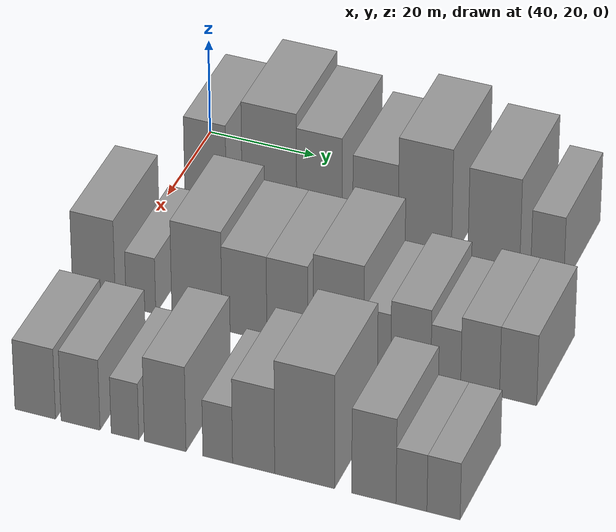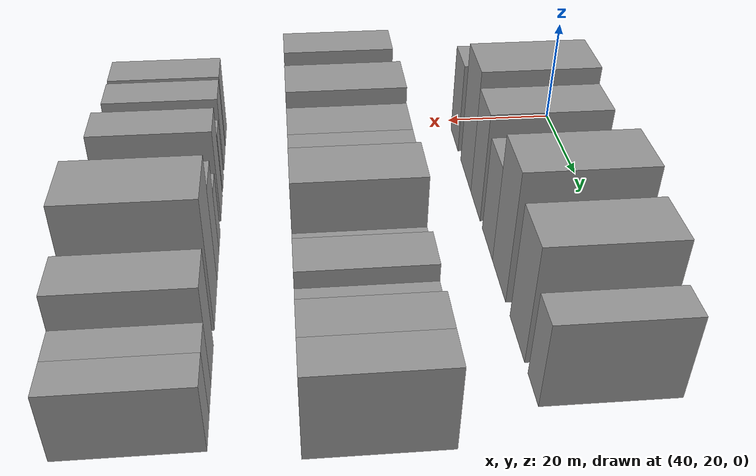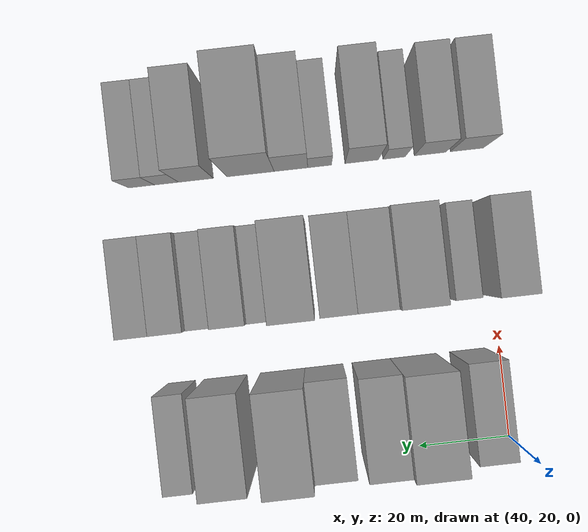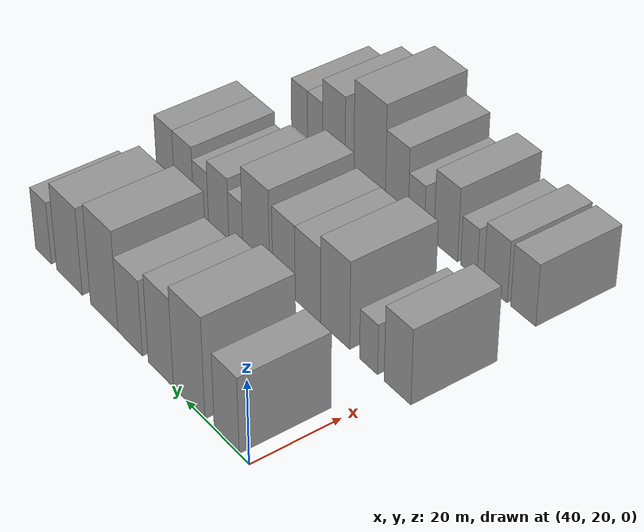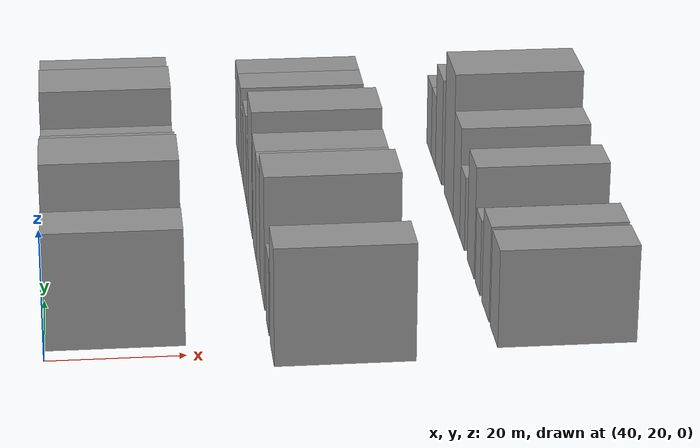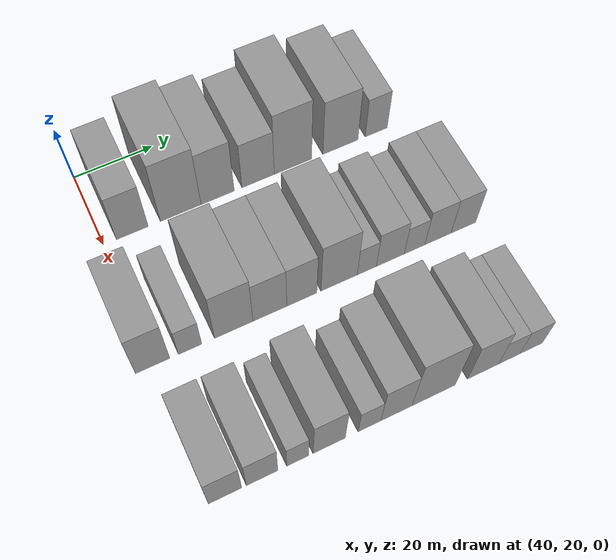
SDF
<sdf version="1.6">
 <world name="default">
  <model name="building_38">
   <static>1</static>
   <pose>50.0000 27.1432 0 0.000000 0.000000 0.000000</pose>
   <link name="link">
    <pose>0 0 9.00 0 0 0</pose>
    <collision name="collision"><geometry><box><size>20.0000 7.8603 18.0000</size></box></geometry></collision>
    <visual name="visual">
     <cast_shadows>0</cast_shadows>
     <geometry><box><size>20.0000 7.8603 18.0000</size></box></geometry>
     <material>
      <script>
       <uri>model://grey_wall/materials/scripts</uri>
       <uri>model://grey_wall/materials/textures</uri>
       <name>vrc/grey_wall</name>
      </script>
     </material>
    </visual>
   </link>
  </model>
  <model name="building_39">
   <static>1</static>
   <pose>50.0000 39.2020 0 0.000000 0.000000 0.000000</pose>
   <link name="link">
    <pose>0 0 12.00 0 0 0</pose>
    <collision name="collision"><geometry><box><size>20.0000 10.2574 24.0000</size></box></geometry></collision>
    <visual name="visual">
     <cast_shadows>0</cast_shadows>
     <geometry><box><size>20.0000 10.2574 24.0000</size></box></geometry>
     <material>
      <script>
       <uri>model://grey_wall/materials/scripts</uri>
       <uri>model://grey_wall/materials/textures</uri>
       <name>vrc/grey_wall</name>
      </script>
     </material>
    </visual>
   </link>
  </model>
  <model name="building_40">
   <static>1</static>
   <pose>50.0000 48.5770 0 0.000000 0.000000 0.000000</pose>
   <link name="link">
    <pose>0 0 10.50 0 0 0</pose>
    <collision name="collision"><geometry><box><size>20.0000 8.4925 21.0000</size></box></geometry></collision>
    <visual name="visual">
     <cast_shadows>0</cast_shadows>
     <geometry><box><size>20.0000 8.4925 21.0000</size></box></geometry>
     <material>
      <script>
       <uri>model://grey_wall/materials/scripts</uri>
       <uri>model://grey_wall/materials/textures</uri>
       <name>vrc/grey_wall</name>
      </script>
     </material>
    </visual>
   </link>
  </model>
  <model name="building_41">
   <static>1</static>
   <pose>50.0000 59.0320 0 0.000000 0.000000 0.000000</pose>
   <link name="link">
    <pose>0 0 9.00 0 0 0</pose>
    <collision name="collision"><geometry><box><size>20.0000 8.4174 18.0000</size></box></geometry></collision>
    <visual name="visual">
     <cast_shadows>0</cast_shadows>
     <geometry><box><size>20.0000 8.4174 18.0000</size></box></geometry>
     <material>
      <script>
       <uri>model://grey_wall/materials/scripts</uri>
       <uri>model://grey_wall/materials/textures</uri>
       <name>vrc/grey_wall</name>
      </script>
     </material>
    </visual>
   </link>
  </model>
  <model name="building_42">
   <static>1</static>
   <pose>50.0000 68.1837 0 0.000000 0.000000 0.000000</pose>
   <link name="link">
    <pose>0 0 12.00 0 0 0</pose>
    <collision name="collision"><geometry><box><size>20.0000 9.8862 24.0000</size></box></geometry></collision>
    <visual name="visual">
     <cast_shadows>0</cast_shadows>
     <geometry><box><size>20.0000 9.8862 24.0000</size></box></geometry>
     <material>
      <script>
       <uri>model://grey_wall/materials/scripts</uri>
       <uri>model://grey_wall/materials/textures</uri>
       <name>vrc/grey_wall</name>
      </script>
     </material>
    </visual>
   </link>
  </model>
  <model name="building_43">
   <static>1</static>
   <pose>50.0000 80.8835 0 0.000000 0.000000 0.000000</pose>
   <link name="link">
    <pose>0 0 10.50 0 0 0</pose>
    <collision name="collision"><geometry><box><size>20.0000 9.5133 21.0000</size></box></geometry></collision>
    <visual name="visual">
     <cast_shadows>0</cast_shadows>
     <geometry><box><size>20.0000 9.5133 21.0000</size></box></geometry>
     <material>
      <script>
       <uri>model://grey_wall/materials/scripts</uri>
       <uri>model://grey_wall/materials/textures</uri>
       <name>vrc/grey_wall</name>
      </script>
     </material>
    </visual>
   </link>
  </model>
  <model name="building_44">
   <static>1</static>
   <pose>50.0000 90.6628 0 0.000000 0.000000 0.000000</pose>
   <link name="link">
    <pose>0 0 7.50 0 0 0</pose>
    <collision name="collision"><geometry><box><size>20.0000 6.0455 15.0000</size></box></geometry></collision>
    <visual name="visual">
     <cast_shadows>0</cast_shadows>
     <geometry><box><size>20.0000 6.0455 15.0000</size></box></geometry>
     <material>
      <script>
       <uri>model://grey_wall/materials/scripts</uri>
       <uri>model://grey_wall/materials/textures</uri>
       <name>vrc/grey_wall</name>
      </script>
     </material>
    </visual>
   </link>
  </model>
  <model name="building_107">
   <static>1</static>
   <pose>82.0000 19.3540 0 0.000000 0.000000 0.000000</pose>
   <link name="link">
    <pose>0 0 9.00 0 0 0</pose>
    <collision name="collision"><geometry><box><size>20.0000 7.9492 18.0000</size></box></geometry></collision>
    <visual name="visual">
     <cast_shadows>0</cast_shadows>
     <geometry><box><size>20.0000 7.9492 18.0000</size></box></geometry>
     <material>
      <script>
       <uri>model://grey_wall/materials/scripts</uri>
       <uri>model://grey_wall/materials/textures</uri>
       <name>vrc/grey_wall</name>
      </script>
     </material>
    </visual>
   </link>
  </model>
  <model name="building_108">
   <static>1</static>
   <pose>82.0000 28.0753 0 0.000000 0.000000 0.000000</pose>
   <link name="link">
    <pose>0 0 6.00 0 0 0</pose>
    <collision name="collision"><geometry><box><size>20.0000 5.4935 12.0000</size></box></geometry></collision>
    <visual name="visual">
     <cast_shadows>0</cast_shadows>
     <geometry><box><size>20.0000 5.4935 12.0000</size></box></geometry>
     <material>
      <script>
       <uri>model://grey_wall/materials/scripts</uri>
       <uri>model://grey_wall/materials/textures</uri>
       <name>vrc/grey_wall</name>
      </script>
     </material>
    </visual>
   </link>
  </model>
  <model name="building_109">
   <static>1</static>
   <pose>82.0000 38.4294 0 0.000000 0.000000 0.000000</pose>
   <link name="link">
    <pose>0 0 10.50 0 0 0</pose>
    <collision name="collision"><geometry><box><size>20.0000 9.2146 21.0000</size></box></geometry></collision>
    <visual name="visual">
     <cast_shadows>0</cast_shadows>
     <geometry><box><size>20.0000 9.2146 21.0000</size></box></geometry>
     <material>
      <script>
       <uri>model://grey_wall/materials/scripts</uri>
       <uri>model://grey_wall/materials/textures</uri>
       <name>vrc/grey_wall</name>
      </script>
     </material>
    </visual>
   </link>
  </model>
  <model name="building_110">
   <static>1</static>
   <pose>82.0000 47.1405 0 0.000000 0.000000 0.000000</pose>
   <link name="link">
    <pose>0 0 9.00 0 0 0</pose>
    <collision name="collision"><geometry><box><size>20.0000 8.2077 18.0000</size></box></geometry></collision>
    <visual name="visual">
     <cast_shadows>0</cast_shadows>
     <geometry><box><size>20.0000 8.2077 18.0000</size></box></geometry>
     <material>
      <script>
       <uri>model://grey_wall/materials/scripts</uri>
       <uri>model://grey_wall/materials/textures</uri>
       <name>vrc/grey_wall</name>
      </script>
     </material>
    </visual>
   </link>
  </model>
  <model name="building_111">
   <static>1</static>
   <pose>82.0000 54.9694 0 0.000000 0.000000 0.000000</pose>
   <link name="link">
    <pose>0 0 9.00 0 0 0</pose>
    <collision name="collision"><geometry><box><size>20.0000 7.4501 18.0000</size></box></geometry></collision>
    <visual name="visual">
     <cast_shadows>0</cast_shadows>
     <geometry><box><size>20.0000 7.4501 18.0000</size></box></geometry>
     <material>
      <script>
       <uri>model://grey_wall/materials/scripts</uri>
       <uri>model://grey_wall/materials/textures</uri>
       <name>vrc/grey_wall</name>
      </script>
     </material>
    </visual>
   </link>
  </model>
  <model name="building_112">
   <static>1</static>
   <pose>82.0000 64.2688 0 0.000000 0.000000 0.000000</pose>
   <link name="link">
    <pose>0 0 10.50 0 0 0</pose>
    <collision name="collision"><geometry><box><size>20.0000 9.1488 21.0000</size></box></geometry></collision>
    <visual name="visual">
     <cast_shadows>0</cast_shadows>
     <geometry><box><size>20.0000 9.1488 21.0000</size></box></geometry>
     <material>
      <script>
       <uri>model://grey_wall/materials/scripts</uri>
       <uri>model://grey_wall/materials/textures</uri>
       <name>vrc/grey_wall</name>
      </script>
     </material>
    </visual>
   </link>
  </model>
  <model name="building_113">
   <static>1</static>
   <pose>82.0000 71.2736 0 0.000000 0.000000 0.000000</pose>
   <link name="link">
    <pose>0 0 6.00 0 0 0</pose>
    <collision name="collision"><geometry><box><size>20.0000 4.8607 12.0000</size></box></geometry></collision>
    <visual name="visual">
     <cast_shadows>0</cast_shadows>
     <geometry><box><size>20.0000 4.8607 12.0000</size></box></geometry>
     <material>
      <script>
       <uri>model://grey_wall/materials/scripts</uri>
       <uri>model://grey_wall/materials/textures</uri>
       <name>vrc/grey_wall</name>
      </script>
     </material>
    </visual>
   </link>
  </model>
  <model name="building_114">
   <static>1</static>
   <pose>82.0000 77.2960 0 0.000000 0.000000 0.000000</pose>
   <link name="link">
    <pose>0 0 7.50 0 0 0</pose>
    <collision name="collision"><geometry><box><size>20.0000 7.1841 15.0000</size></box></geometry></collision>
    <visual name="visual">
     <cast_shadows>0</cast_shadows>
     <geometry><box><size>20.0000 7.1841 15.0000</size></box></geometry>
     <material>
      <script>
       <uri>model://grey_wall/materials/scripts</uri>
       <uri>model://grey_wall/materials/textures</uri>
       <name>vrc/grey_wall</name>
      </script>
     </material>
    </visual>
   </link>
  </model>
  <model name="building_115">
   <static>1</static>
   <pose>82.0000 83.5635 0 0.000000 0.000000 0.000000</pose>
   <link name="link">
    <pose>0 0 6.00 0 0 0</pose>
    <collision name="collision"><geometry><box><size>20.0000 5.3509 12.0000</size></box></geometry></collision>
    <visual name="visual">
     <cast_shadows>0</cast_shadows>
     <geometry><box><size>20.0000 5.3509 12.0000</size></box></geometry>
     <material>
      <script>
       <uri>model://grey_wall/materials/scripts</uri>
       <uri>model://grey_wall/materials/textures</uri>
       <name>vrc/grey_wall</name>
      </script>
     </material>
    </visual>
   </link>
  </model>
  <model name="building_116">
   <static>1</static>
   <pose>82.0000 89.6961 0 0.000000 0.000000 0.000000</pose>
   <link name="link">
    <pose>0 0 7.50 0 0 0</pose>
    <collision name="collision"><geometry><box><size>20.0000 6.9144 15.0000</size></box></geometry></collision>
    <visual name="visual">
     <cast_shadows>0</cast_shadows>
     <geometry><box><size>20.0000 6.9144 15.0000</size></box></geometry>
     <material>
      <script>
       <uri>model://grey_wall/materials/scripts</uri>
       <uri>model://grey_wall/materials/textures</uri>
       <name>vrc/grey_wall</name>
      </script>
     </material>
    </visual>
   </link>
  </model>
  <model name="building_117">
   <static>1</static>
   <pose>82.0000 96.4461 0 0.000000 0.000000 0.000000</pose>
   <link name="link">
    <pose>0 0 7.50 0 0 0</pose>
    <collision name="collision"><geometry><box><size>20.0000 6.5855 15.0000</size></box></geometry></collision>
    <visual name="visual">
     <cast_shadows>0</cast_shadows>
     <geometry><box><size>20.0000 6.5855 15.0000</size></box></geometry>
     <material>
      <script>
       <uri>model://grey_wall/materials/scripts</uri>
       <uri>model://grey_wall/materials/textures</uri>
       <name>vrc/grey_wall</name>
      </script>
     </material>
    </visual>
   </link>
  </model>
  <model name="building_188">
   <static>1</static>
   <pose>114.0000 22.2365 0 0.000000 0.000000 0.000000</pose>
   <link name="link">
    <pose>0 0 7.50 0 0 0</pose>
    <collision name="collision"><geometry><box><size>20.0000 7.3695 15.0000</size></box></geometry></collision>
    <visual name="visual">
     <cast_shadows>0</cast_shadows>
     <geometry><box><size>20.0000 7.3695 15.0000</size></box></geometry>
     <material>
      <script>
       <uri>model://grey_wall/materials/scripts</uri>
       <uri>model://grey_wall/materials/textures</uri>
       <name>vrc/grey_wall</name>
      </script>
     </material>
    </visual>
   </link>
  </model>
  <model name="building_189">
   <static>1</static>
   <pose>114.0000 30.4469 0 0.000000 0.000000 0.000000</pose>
   <link name="link">
    <pose>0 0 7.50 0 0 0</pose>
    <collision name="collision"><geometry><box><size>20.0000 7.0515 15.0000</size></box></geometry></collision>
    <visual name="visual">
     <cast_shadows>0</cast_shadows>
     <geometry><box><size>20.0000 7.0515 15.0000</size></box></geometry>
     <material>
      <script>
       <uri>model://grey_wall/materials/scripts</uri>
       <uri>model://grey_wall/materials/textures</uri>
       <name>vrc/grey_wall</name>
      </script>
     </material>
    </visual>
   </link>
  </model>
  <model name="building_190">
   <static>1</static>
   <pose>114.0000 38.4668 0 0.000000 0.000000 0.000000</pose>
   <link name="link">
    <pose>0 0 6.00 0 0 0</pose>
    <collision name="collision"><geometry><box><size>20.0000 4.9883 12.0000</size></box></geometry></collision>
    <visual name="visual">
     <cast_shadows>0</cast_shadows>
     <geometry><box><size>20.0000 4.9883 12.0000</size></box></geometry>
     <material>
      <script>
       <uri>model://grey_wall/materials/scripts</uri>
       <uri>model://grey_wall/materials/textures</uri>
       <name>vrc/grey_wall</name>
      </script>
     </material>
    </visual>
   </link>
  </model>
  <model name="building_191">
   <static>1</static>
   <pose>114.0000 45.6830 0 0.000000 0.000000 0.000000</pose>
   <link name="link">
    <pose>0 0 9.00 0 0 0</pose>
    <collision name="collision"><geometry><box><size>20.0000 7.4439 18.0000</size></box></geometry></collision>
    <visual name="visual">
     <cast_shadows>0</cast_shadows>
     <geometry><box><size>20.0000 7.4439 18.0000</size></box></geometry>
     <material>
      <script>
       <uri>model://grey_wall/materials/scripts</uri>
       <uri>model://grey_wall/materials/textures</uri>
       <name>vrc/grey_wall</name>
      </script>
     </material>
    </visual>
   </link>
  </model>
  <model name="building_192">
   <static>1</static>
   <pose>114.0000 55.0447 0 0.000000 0.000000 0.000000</pose>
   <link name="link">
    <pose>0 0 6.00 0 0 0</pose>
    <collision name="collision"><geometry><box><size>20.0000 5.2796 12.0000</size></box></geometry></collision>
    <visual name="visual">
     <cast_shadows>0</cast_shadows>
     <geometry><box><size>20.0000 5.2796 12.0000</size></box></geometry>
     <material>
      <script>
       <uri>model://grey_wall/materials/scripts</uri>
       <uri>model://grey_wall/materials/textures</uri>
       <name>vrc/grey_wall</name>
      </script>
     </material>
    </visual>
   </link>
  </model>
  <model name="building_193">
   <static>1</static>
   <pose>114.0000 61.4135 0 0.000000 0.000000 0.000000</pose>
   <link name="link">
    <pose>0 0 9.00 0 0 0</pose>
    <collision name="collision"><geometry><box><size>20.0000 7.4579 18.0000</size></box></geometry></collision>
    <visual name="visual">
     <cast_shadows>0</cast_shadows>
     <geometry><box><size>20.0000 7.4579 18.0000</size></box></geometry>
     <material>
      <script>
       <uri>model://grey_wall/materials/scripts</uri>
       <uri>model://grey_wall/materials/textures</uri>
       <name>vrc/grey_wall</name>
      </script>
     </material>
    </visual>
   </link>
  </model>
  <model name="building_194">
   <static>1</static>
   <pose>114.0000 70.4148 0 0.000000 0.000000 0.000000</pose>
   <link name="link">
    <pose>0 0 12.00 0 0 0</pose>
    <collision name="collision"><geometry><box><size>20.0000 10.5447 24.0000</size></box></geometry></collision>
    <visual name="visual">
     <cast_shadows>0</cast_shadows>
     <geometry><box><size>20.0000 10.5447 24.0000</size></box></geometry>
     <material>
      <script>
       <uri>model://grey_wall/materials/scripts</uri>
       <uri>model://grey_wall/materials/textures</uri>
       <name>vrc/grey_wall</name>
      </script>
     </material>
    </visual>
   </link>
  </model>
  <model name="building_195">
   <static>1</static>
   <pose>114.0000 82.5538 0 0.000000 0.000000 0.000000</pose>
   <link name="link">
    <pose>0 0 9.00 0 0 0</pose>
    <collision name="collision"><geometry><box><size>20.0000 7.7333 18.0000</size></box></geometry></collision>
    <visual name="visual">
     <cast_shadows>0</cast_shadows>
     <geometry><box><size>20.0000 7.7333 18.0000</size></box></geometry>
     <material>
      <script>
       <uri>model://grey_wall/materials/scripts</uri>
       <uri>model://grey_wall/materials/textures</uri>
       <name>vrc/grey_wall</name>
      </script>
     </material>
    </visual>
   </link>
  </model>
  <model name="building_196">
   <static>1</static>
   <pose>114.0000 89.1071 0 0.000000 0.000000 0.000000</pose>
   <link name="link">
    <pose>0 0 6.00 0 0 0</pose>
    <collision name="collision"><geometry><box><size>20.0000 5.3734 12.0000</size></box></geometry></collision>
    <visual name="visual">
     <cast_shadows>0</cast_shadows>
     <geometry><box><size>20.0000 5.3734 12.0000</size></box></geometry>
     <material>
      <script>
       <uri>model://grey_wall/materials/scripts</uri>
       <uri>model://grey_wall/materials/textures</uri>
       <name>vrc/grey_wall</name>
      </script>
     </material>
    </visual>
   </link>
  </model>
  <model name="building_197">
   <static>1</static>
   <pose>114.0000 94.6709 0 0.000000 0.000000 0.000000</pose>
   <link name="link">
    <pose>0 0 6.00 0 0 0</pose>
    <collision name="collision"><geometry><box><size>20.0000 5.7541 12.0000</size></box></geometry></collision>
    <visual name="visual">
     <cast_shadows>0</cast_shadows>
     <geometry><box><size>20.0000 5.7541 12.0000</size></box></geometry>
     <material>
      <script>
       <uri>model://grey_wall/materials/scripts</uri>
       <uri>model://grey_wall/materials/textures</uri>
       <name>vrc/grey_wall</name>
      </script>
     </material>
    </visual>
   </link>
  </model>
 </world>
</sdf>
